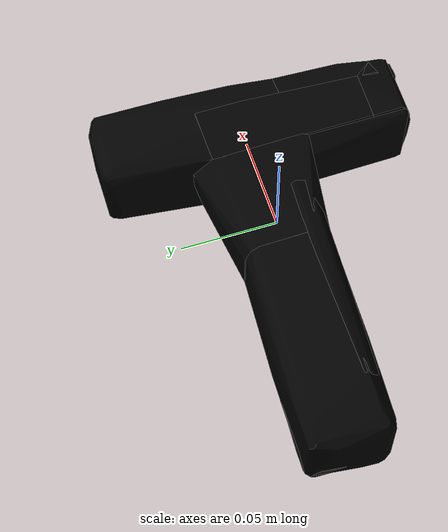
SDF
<?xml version='1.0' encoding='UTF-8'?>
<sdf version="1.7">
  <model name="your_mesh_centered">
    <link name="vertical_link">
      <inertial>
        <pose>0 0 0 0 0 0</pose>
        <mass>1</mass>
        <inertia>
          <ixx>0.0013410859</ixx>
          <iyy>0.0037805728</iyy>
          <izz>0.0047956966</izz>
          <ixy>0.00012752152</ixy>
          <ixz>-1.6544051e-05</ixz>
          <iyz>5.5528569e-06</iyz>
        </inertia>
      </inertial>
      <visual name="convex_0">
        <pose>0 0 0 0 0 0</pose>
        <geometry>
          <mesh>
            <uri>your_mesh_centered_convex_0.obj</uri>
          </mesh>
        </geometry>
        <material>
          <diffuse>0 0 0 1</diffuse>
        </material>
      </visual>
      <collision name="convex_0_volume">
        <pose>0 0 0 0 0 0</pose>
        <geometry>
          <mesh>
            <uri>your_mesh_centered_convex_0.obj</uri>
          </mesh>
        </geometry>
        <drake:proximity_properties xmlns:drake="uri:drake">
          <drake:compliant_hydroelastic/>
          <drake:hydroelastic_modulus> 3.0e7 </drake:hydroelastic_modulus>
          <drake:mesh_resolution_hint> 0.18 </drake:mesh_resolution_hint>
          <drake:hunt_crossley_dissipation>10</drake:hunt_crossley_dissipation>
          <drake:mu_dynamic>0.3</drake:mu_dynamic>
        </drake:proximity_properties>
      </collision>
      <visual name="convex_1">
        <pose>0 0 0 0 0 0</pose>
        <geometry>
          <mesh>
            <uri>your_mesh_centered_convex_1.obj</uri>
          </mesh>
        </geometry>
        <material>
          <diffuse>0 0 0 1</diffuse>
        </material>
      </visual>
      <collision name="convex_1_volume">
        <pose>0 0 0 0 0 0</pose>
        <geometry>
          <mesh>
            <uri>your_mesh_centered_convex_1.obj</uri>
          </mesh>
        </geometry>
        <drake:proximity_properties xmlns:drake="uri:drake">
          <drake:compliant_hydroelastic/>
          <drake:hydroelastic_modulus> 3.0e7 </drake:hydroelastic_modulus>
          <drake:mesh_resolution_hint> 0.18 </drake:mesh_resolution_hint>
          <drake:hunt_crossley_dissipation>10</drake:hunt_crossley_dissipation>
          <drake:mu_dynamic>0.3</drake:mu_dynamic>
        </drake:proximity_properties>
      </collision>
      <visual name="convex_2">
        <pose>0 0 0 0 0 0</pose>
        <geometry>
          <mesh>
            <uri>your_mesh_centered_convex_2.obj</uri>
          </mesh>
        </geometry>
        <material>
          <diffuse>0 0 0 1</diffuse>
        </material>
      </visual>
      <collision name="convex_2_volume">
        <pose>0 0 0 0 0 0</pose>
        <geometry>
          <mesh>
            <uri>your_mesh_centered_convex_2.obj</uri>
          </mesh>
        </geometry>
        <drake:proximity_properties xmlns:drake="uri:drake">
          <drake:compliant_hydroelastic/>
          <drake:hydroelastic_modulus> 3.0e7 </drake:hydroelastic_modulus>
          <drake:mesh_resolution_hint> 0.18 </drake:mesh_resolution_hint>
          <drake:hunt_crossley_dissipation>10</drake:hunt_crossley_dissipation>
          <drake:mu_dynamic>0.3</drake:mu_dynamic>
        </drake:proximity_properties>
      </collision>
      <visual name="convex_3">
        <pose>0 0 0 0 0 0</pose>
        <geometry>
          <mesh>
            <uri>your_mesh_centered_convex_3.obj</uri>
          </mesh>
        </geometry>
        <material>
          <diffuse>0 0 0 1</diffuse>
        </material>
      </visual>
      <collision name="convex_3_volume">
        <pose>0 0 0 0 0 0</pose>
        <geometry>
          <mesh>
            <uri>your_mesh_centered_convex_3.obj</uri>
          </mesh>
        </geometry>
        <drake:proximity_properties xmlns:drake="uri:drake">
          <drake:compliant_hydroelastic/>
          <drake:hydroelastic_modulus> 3.0e7 </drake:hydroelastic_modulus>
          <drake:mesh_resolution_hint> 0.18 </drake:mesh_resolution_hint>
          <drake:hunt_crossley_dissipation>10</drake:hunt_crossley_dissipation>
          <drake:mu_dynamic>0.3</drake:mu_dynamic>
        </drake:proximity_properties>
      </collision>
      <visual name="convex_4">
        <pose>0 0 0 0 0 0</pose>
        <geometry>
          <mesh>
            <uri>your_mesh_centered_convex_4.obj</uri>
          </mesh>
        </geometry>
        <material>
          <diffuse>0 0 0 1</diffuse>
        </material>
      </visual>
      <collision name="convex_4_volume">
        <pose>0 0 0 0 0 0</pose>
        <geometry>
          <mesh>
            <uri>your_mesh_centered_convex_4.obj</uri>
          </mesh>
        </geometry>
        <drake:proximity_properties xmlns:drake="uri:drake">
          <drake:compliant_hydroelastic/>
          <drake:hydroelastic_modulus> 3.0e7 </drake:hydroelastic_modulus>
          <drake:mesh_resolution_hint> 0.18 </drake:mesh_resolution_hint>
          <drake:hunt_crossley_dissipation>10</drake:hunt_crossley_dissipation>
          <drake:mu_dynamic>0.3</drake:mu_dynamic>
        </drake:proximity_properties>
      </collision>
      <visual name="convex_5">
        <pose>0 0 0 0 0 0</pose>
        <geometry>
          <mesh>
            <uri>your_mesh_centered_convex_5.obj</uri>
          </mesh>
        </geometry>
        <material>
          <diffuse>0 0 0 1</diffuse>
        </material>
      </visual>
      <collision name="convex_5_volume">
        <pose>0 0 0 0 0 0</pose>
        <geometry>
          <mesh>
            <uri>your_mesh_centered_convex_5.obj</uri>
          </mesh>
        </geometry>
        <drake:proximity_properties xmlns:drake="uri:drake">
          <drake:compliant_hydroelastic/>
          <drake:hydroelastic_modulus> 3.0e7 </drake:hydroelastic_modulus>
          <drake:mesh_resolution_hint> 0.18 </drake:mesh_resolution_hint>
          <drake:hunt_crossley_dissipation>10</drake:hunt_crossley_dissipation>
          <drake:mu_dynamic>0.3</drake:mu_dynamic>
        </drake:proximity_properties>
      </collision>
      <visual name="convex_6">
        <pose>0 0 0 0 0 0</pose>
        <geometry>
          <mesh>
            <uri>your_mesh_centered_convex_6.obj</uri>
          </mesh>
        </geometry>
        <material>
          <diffuse>0 0 0 1</diffuse>
        </material>
      </visual>
      <collision name="convex_6_volume">
        <pose>0 0 0 0 0 0</pose>
        <geometry>
          <mesh>
            <uri>your_mesh_centered_convex_6.obj</uri>
          </mesh>
        </geometry>
        <drake:proximity_properties xmlns:drake="uri:drake">
          <drake:compliant_hydroelastic/>
          <drake:hydroelastic_modulus> 3.0e7 </drake:hydroelastic_modulus>
          <drake:mesh_resolution_hint> 0.18 </drake:mesh_resolution_hint>
          <drake:hunt_crossley_dissipation>10</drake:hunt_crossley_dissipation>
          <drake:mu_dynamic>0.3</drake:mu_dynamic>
        </drake:proximity_properties>
      </collision>
      <visual name="convex_7">
        <pose>0 0 0 0 0 0</pose>
        <geometry>
          <mesh>
            <uri>your_mesh_centered_convex_7.obj</uri>
          </mesh>
        </geometry>
        <material>
          <diffuse>0 0 0 1</diffuse>
        </material>
      </visual>
      <collision name="convex_7_volume">
        <pose>0 0 0 0 0 0</pose>
        <geometry>
          <mesh>
            <uri>your_mesh_centered_convex_7.obj</uri>
          </mesh>
        </geometry>
        <drake:proximity_properties xmlns:drake="uri:drake">
          <drake:compliant_hydroelastic/>
          <drake:hydroelastic_modulus> 3.0e7 </drake:hydroelastic_modulus>
          <drake:mesh_resolution_hint> 0.18 </drake:mesh_resolution_hint>
          <drake:hunt_crossley_dissipation>10</drake:hunt_crossley_dissipation>
          <drake:mu_dynamic>0.3</drake:mu_dynamic>
        </drake:proximity_properties>
      </collision>
      <visual name="convex_8">
        <pose>0 0 0 0 0 0</pose>
        <geometry>
          <mesh>
            <uri>your_mesh_centered_convex_8.obj</uri>
          </mesh>
        </geometry>
        <material>
          <diffuse>0 0 0 1</diffuse>
        </material>
      </visual>
      <collision name="convex_8_volume">
        <pose>0 0 0 0 0 0</pose>
        <geometry>
          <mesh>
            <uri>your_mesh_centered_convex_8.obj</uri>
          </mesh>
        </geometry>
        <drake:proximity_properties xmlns:drake="uri:drake">
          <drake:compliant_hydroelastic/>
          <drake:hydroelastic_modulus> 3.0e7 </drake:hydroelastic_modulus>
          <drake:mesh_resolution_hint> 0.18 </drake:mesh_resolution_hint>
          <drake:hunt_crossley_dissipation>10</drake:hunt_crossley_dissipation>
          <drake:mu_dynamic>0.3</drake:mu_dynamic>
        </drake:proximity_properties>
      </collision>
      <visual name="convex_9">
        <pose>0 0 0 0 0 0</pose>
        <geometry>
          <mesh>
            <uri>your_mesh_centered_convex_9.obj</uri>
          </mesh>
        </geometry>
        <material>
          <diffuse>0 0 0 1</diffuse>
        </material>
      </visual>
      <collision name="convex_9_volume">
        <pose>0 0 0 0 0 0</pose>
        <geometry>
          <mesh>
            <uri>your_mesh_centered_convex_9.obj</uri>
          </mesh>
        </geometry>
        <drake:proximity_properties xmlns:drake="uri:drake">
          <drake:compliant_hydroelastic/>
          <drake:hydroelastic_modulus> 3.0e7 </drake:hydroelastic_modulus>
          <drake:mesh_resolution_hint> 0.18 </drake:mesh_resolution_hint>
          <drake:hunt_crossley_dissipation>10</drake:hunt_crossley_dissipation>
          <drake:mu_dynamic>0.3</drake:mu_dynamic>
        </drake:proximity_properties>
      </collision>
    </link>
  </model>
</sdf>
